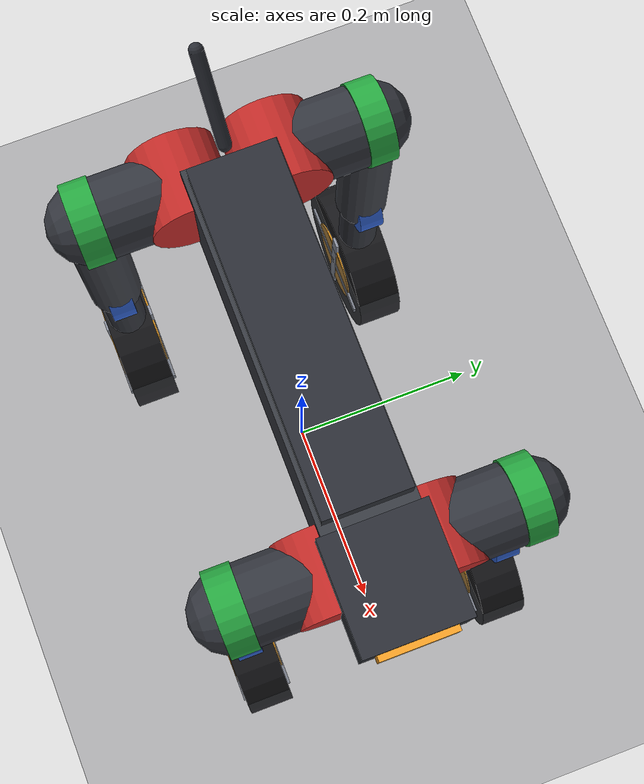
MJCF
<mujoco model="hound16pd">
  <compiler angle="radian" coordinate="local" inertiafromgeom="true"/>
  <option integrator="implicitfast" timestep="0.005"/>

  <visual>
    <global offwidth="1920" offheight="1088"/>
    <quality shadowsize="4096"/>
  </visual>

  <default>
    <!-- Leg joints. stiffness/springref are set per-joint (the stance differs
         per joint); everything else is shared. -->
    <joint type="hinge" limited="true" armature="0.01"
           damping="1.5" frictionloss="0.2"/>
    <geom condim="3" friction="0.9 0.5 0.5" margin="0.001" group="0"/>
    <motor ctrllimited="true" ctrlrange="-1 1"/>

    <!-- The wheel hinge: unlimited, no spring, low rotor inertia. Everything
         about this class exists because a wheel is not a joint with a pose. -->
    <default class="wheel">
      <joint type="hinge" limited="false" stiffness="0"
             armature="0.004" damping="0.05"
             frictionloss="0.3990"/>
    </default>

    <default class="tyre">
      <geom condim="3" priority="1"
            friction="0.9 0.03 0.002" solimp="0.95 0.99 0.001"
            margin="0.0" material="MatTyre"/>
    </default>

    <default class="deco">
      <geom contype="0" conaffinity="0" density="0" group="2"/>
    </default>
    <default class="hub">
      <geom contype="0" conaffinity="0" density="0" group="2"/>
    </default>
  </default>

  <asset>
    <material name="MatShell"  rgba="0.17 0.18 0.21 1" specular="0.6" shininess="0.55" reflectance="0.10"/>
    <material name="MatAbduct" rgba="0.76 0.17 0.16 1" specular="0.5" shininess="0.40"/>
    <material name="MatHip"    rgba="0.15 0.65 0.25 1" specular="0.5" shininess="0.40"/>
    <material name="MatKnee"   rgba="0.20 0.40 0.85 1" specular="0.5" shininess="0.40"/>
    <material name="MatWheel"  rgba="0.82 0.55 0.12 1" specular="0.7" shininess="0.60"/>
    <material name="MatSpoke"  rgba="0.55 0.57 0.62 1" specular="0.7" shininess="0.60"/>
    <material name="MatTyre"   rgba="0.09 0.09 0.10 1" specular="0.15" shininess="0.10"/>
    <material name="MatLens"   rgba="0.95 0.62 0.15 1" specular="0.9" shininess="0.90" emission="0.45"/>
  </asset>

  <asset>
    <texture builtin="gradient" height="100" rgb1="0.36 0.50 0.72" rgb2="0.82 0.86 0.92"
             type="skybox" width="100"/>
    <texture name="texplane" type="2d" builtin="checker" rgb1="0.24 0.25 0.27"
             rgb2="0.31 0.32 0.35" width="512" height="512"/>
    <material name="MatPlane" texture="texplane" texrepeat="20 20" reflectance="0.08"/>
  </asset>

  <worldbody>
    <light cutoff="100" diffuse="1 0.98 0.94" dir="0.35 0.25 -0.90" directional="true"
           exponent="1" pos="0 0 6" mode="trackcom" specular="0.15 0.15 0.15"/>
    <geom name="floor" type="plane" size="40 40 0.1" material="MatPlane"
          condim="3" conaffinity="1" group="0" friction="1 0.5 0.5"/>

    <body name="trunk" pos="0 0 0.3634">
      <camera name="track" mode="trackcom" pos="0 -2.2 0.5" xyaxes="1 0 0 0 0.3 1"/>
      <joint name="root" type="free" armature="0" damping="0" stiffness="0" limited="false"/>

      <geom name="trunk_geom" type="box" size="0.1881 0.04675 0.057" mass="6.921"
            rgba="0.22 0.23 0.26 1"/>
      <geom class="deco" name="head_pod" type="box" size="0.055 0.052 0.040"
            pos="0.2231 0 0.030" material="MatShell"/>
      <geom class="deco" name="head_lens" type="box" size="0.008 0.038 0.018"
            pos="0.2761 0 0.034" material="MatLens"/>
      <geom class="deco" name="deck" type="box" size="0.1681 0.0427 0.014"
            pos="-0.010 0 0.0690" material="MatShell"/>
      <geom class="deco" name="tail_mast" type="capsule" size="0.007"
            fromto="-0.1981 0 0.0570  -0.2581 0 0.1320"
            material="MatShell"/>

      <!-- ══ FL ══ -->
      <body name="FL_abduct" pos="0.1934 0.0465 0">
        <joint name="FL_abduct" axis="1 0 0" range="-0.8 0.8"
               stiffness="12.12" springref="-0.160000"/>
        <geom name="FL_abduct_geom" type="capsule" size="0.040"
              fromto="0 0 0  0 0.0955 0" mass="0.678" rgba="0.20 0.21 0.24 1"/>
        <geom class="hub" name="FL_abduct_hub" type="cylinder" size="0.044"
              fromto="-0.040 0 0  0.040 0 0" material="MatAbduct"/>

        <body name="FL_thigh" pos="0 0.0955 0">
          <joint name="FL_hip" axis="0 1 0" range="-1.2 2.6"
                 stiffness="18.58" springref="0.803400"/>
          <geom name="FL_thigh_geom" type="capsule" size="0.028"
                fromto="0 0 0  0 0 -0.2130" mass="1.152"
                rgba="0.24 0.25 0.28 1"/>
          <geom class="hub" name="FL_hip_hub" type="cylinder" size="0.042 0.014"
                fromto="0 -0.014 0  0 0.014 0" material="MatHip"/>

          <body name="FL_calf" pos="0 0 -0.2130">
            <joint name="FL_knee" axis="0 1 0" range="-2.6 -0.6"
                   stiffness="32.77" springref="-1.459727"/>
            <geom name="FL_calf_geom" type="capsule" size="0.022"
                  fromto="0 0 0  0 0 -0.1900" mass="0.241"
                  rgba="0.20 0.21 0.24 1"/>
            <geom class="hub" name="FL_knee_hub" type="cylinder" size="0.034 0.013"
                  fromto="0 -0.013 0  0 0.013 0" material="MatKnee"/>

            <body name="FL_wheel" pos="0 0 -0.1900">
              <joint class="wheel" name="FL_wheel" axis="0 1 0"/>
              <geom class="tyre" name="FL_wheel_geom" type="cylinder"
                    size="0.085" fromto="0 -0.025 0  0 0.025 0"
                    mass="0.45"/>
              <geom class="hub" name="FL_rim" type="cylinder"
                    size="0.0468"
                    fromto="0 -0.0270 0  0 0.0270 0" material="MatWheel"/>
              <geom class="hub" name="FL_spoke_a" type="box"
                    size="0.0680 0.0280 0.006"
                    material="MatSpoke"/>
              <geom class="hub" name="FL_spoke_b" type="box"
                    size="0.006 0.0280 0.0680"
                    material="MatSpoke"/>
            </body>
          </body>
        </body>
      </body>
      <!-- ══ FR ══ -->
      <body name="FR_abduct" pos="0.1934 -0.0465 0">
        <joint name="FR_abduct" axis="1 0 0" range="-0.8 0.8"
               stiffness="12.12" springref="0.160000"/>
        <geom name="FR_abduct_geom" type="capsule" size="0.040"
              fromto="0 0 0  0 -0.0955 0" mass="0.678" rgba="0.20 0.21 0.24 1"/>
        <geom class="hub" name="FR_abduct_hub" type="cylinder" size="0.044"
              fromto="-0.040 0 0  0.040 0 0" material="MatAbduct"/>

        <body name="FR_thigh" pos="0 -0.0955 0">
          <joint name="FR_hip" axis="0 1 0" range="-1.2 2.6"
                 stiffness="18.58" springref="0.803400"/>
          <geom name="FR_thigh_geom" type="capsule" size="0.028"
                fromto="0 0 0  0 0 -0.2130" mass="1.152"
                rgba="0.24 0.25 0.28 1"/>
          <geom class="hub" name="FR_hip_hub" type="cylinder" size="0.042 0.014"
                fromto="0 -0.014 0  0 0.014 0" material="MatHip"/>

          <body name="FR_calf" pos="0 0 -0.2130">
            <joint name="FR_knee" axis="0 1 0" range="-2.6 -0.6"
                   stiffness="32.77" springref="-1.459727"/>
            <geom name="FR_calf_geom" type="capsule" size="0.022"
                  fromto="0 0 0  0 0 -0.1900" mass="0.241"
                  rgba="0.20 0.21 0.24 1"/>
            <geom class="hub" name="FR_knee_hub" type="cylinder" size="0.034 0.013"
                  fromto="0 -0.013 0  0 0.013 0" material="MatKnee"/>

            <body name="FR_wheel" pos="0 0 -0.1900">
              <joint class="wheel" name="FR_wheel" axis="0 1 0"/>
              <geom class="tyre" name="FR_wheel_geom" type="cylinder"
                    size="0.085" fromto="0 -0.025 0  0 0.025 0"
                    mass="0.45"/>
              <geom class="hub" name="FR_rim" type="cylinder"
                    size="0.0468"
                    fromto="0 -0.0270 0  0 0.0270 0" material="MatWheel"/>
              <geom class="hub" name="FR_spoke_a" type="box"
                    size="0.0680 0.0280 0.006"
                    material="MatSpoke"/>
              <geom class="hub" name="FR_spoke_b" type="box"
                    size="0.006 0.0280 0.0680"
                    material="MatSpoke"/>
            </body>
          </body>
        </body>
      </body>
      <!-- ══ RL ══ -->
      <body name="RL_abduct" pos="-0.1934 0.0465 0">
        <joint name="RL_abduct" axis="1 0 0" range="-0.8 0.8"
               stiffness="12.12" springref="-0.160000"/>
        <geom name="RL_abduct_geom" type="capsule" size="0.040"
              fromto="0 0 0  0 0.0955 0" mass="0.678" rgba="0.20 0.21 0.24 1"/>
        <geom class="hub" name="RL_abduct_hub" type="cylinder" size="0.044"
              fromto="-0.040 0 0  0.040 0 0" material="MatAbduct"/>

        <body name="RL_thigh" pos="0 0.0955 0">
          <joint name="RL_hip" axis="0 1 0" range="-1.2 2.6"
                 stiffness="18.58" springref="0.803400"/>
          <geom name="RL_thigh_geom" type="capsule" size="0.028"
                fromto="0 0 0  0 0 -0.2130" mass="1.152"
                rgba="0.24 0.25 0.28 1"/>
          <geom class="hub" name="RL_hip_hub" type="cylinder" size="0.042 0.014"
                fromto="0 -0.014 0  0 0.014 0" material="MatHip"/>

          <body name="RL_calf" pos="0 0 -0.2130">
            <joint name="RL_knee" axis="0 1 0" range="-2.6 -0.6"
                   stiffness="32.77" springref="-1.459727"/>
            <geom name="RL_calf_geom" type="capsule" size="0.022"
                  fromto="0 0 0  0 0 -0.1900" mass="0.241"
                  rgba="0.20 0.21 0.24 1"/>
            <geom class="hub" name="RL_knee_hub" type="cylinder" size="0.034 0.013"
                  fromto="0 -0.013 0  0 0.013 0" material="MatKnee"/>

            <body name="RL_wheel" pos="0 0 -0.1900">
              <joint class="wheel" name="RL_wheel" axis="0 1 0"/>
              <geom class="tyre" name="RL_wheel_geom" type="cylinder"
                    size="0.085" fromto="0 -0.025 0  0 0.025 0"
                    mass="0.45"/>
              <geom class="hub" name="RL_rim" type="cylinder"
                    size="0.0468"
                    fromto="0 -0.0270 0  0 0.0270 0" material="MatWheel"/>
              <geom class="hub" name="RL_spoke_a" type="box"
                    size="0.0680 0.0280 0.006"
                    material="MatSpoke"/>
              <geom class="hub" name="RL_spoke_b" type="box"
                    size="0.006 0.0280 0.0680"
                    material="MatSpoke"/>
            </body>
          </body>
        </body>
      </body>
      <!-- ══ RR ══ -->
      <body name="RR_abduct" pos="-0.1934 -0.0465 0">
        <joint name="RR_abduct" axis="1 0 0" range="-0.8 0.8"
               stiffness="12.12" springref="0.160000"/>
        <geom name="RR_abduct_geom" type="capsule" size="0.040"
              fromto="0 0 0  0 -0.0955 0" mass="0.678" rgba="0.20 0.21 0.24 1"/>
        <geom class="hub" name="RR_abduct_hub" type="cylinder" size="0.044"
              fromto="-0.040 0 0  0.040 0 0" material="MatAbduct"/>

        <body name="RR_thigh" pos="0 -0.0955 0">
          <joint name="RR_hip" axis="0 1 0" range="-1.2 2.6"
                 stiffness="18.58" springref="0.803400"/>
          <geom name="RR_thigh_geom" type="capsule" size="0.028"
                fromto="0 0 0  0 0 -0.2130" mass="1.152"
                rgba="0.24 0.25 0.28 1"/>
          <geom class="hub" name="RR_hip_hub" type="cylinder" size="0.042 0.014"
                fromto="0 -0.014 0  0 0.014 0" material="MatHip"/>

          <body name="RR_calf" pos="0 0 -0.2130">
            <joint name="RR_knee" axis="0 1 0" range="-2.6 -0.6"
                   stiffness="32.77" springref="-1.459727"/>
            <geom name="RR_calf_geom" type="capsule" size="0.022"
                  fromto="0 0 0  0 0 -0.1900" mass="0.241"
                  rgba="0.20 0.21 0.24 1"/>
            <geom class="hub" name="RR_knee_hub" type="cylinder" size="0.034 0.013"
                  fromto="0 -0.013 0  0 0.013 0" material="MatKnee"/>

            <body name="RR_wheel" pos="0 0 -0.1900">
              <joint class="wheel" name="RR_wheel" axis="0 1 0"/>
              <geom class="tyre" name="RR_wheel_geom" type="cylinder"
                    size="0.085" fromto="0 -0.025 0  0 0.025 0"
                    mass="0.45"/>
              <geom class="hub" name="RR_rim" type="cylinder"
                    size="0.0468"
                    fromto="0 -0.0270 0  0 0.0270 0" material="MatWheel"/>
              <geom class="hub" name="RR_spoke_a" type="box"
                    size="0.0680 0.0280 0.006"
                    material="MatSpoke"/>
              <geom class="hub" name="RR_spoke_b" type="box"
                    size="0.006 0.0280 0.0680"
                    material="MatSpoke"/>
            </body>
          </body>
        </body>
      </body>
    </body>
  </worldbody>

  <actuator>
    <position name="FL_abduct" joint="FL_abduct" kp="60.0" kv="3.0" ctrlrange="-0.8 0.8" forcerange="-23.7 23.7"/>
    <position name="FL_hip"    joint="FL_hip"    kp="80.0" kv="4.0" ctrlrange="-1.2 2.6" forcerange="-23.7 23.7"/>
    <position name="FL_knee"   joint="FL_knee"   kp="90.0" kv="4.5" ctrlrange="-2.6 -0.6" forcerange="-40.0 40.0"/>
    <motor name="FL_wheel"  joint="FL_wheel"  gear="3.0"/>
    <position name="FR_abduct" joint="FR_abduct" kp="60.0" kv="3.0" ctrlrange="-0.8 0.8" forcerange="-23.7 23.7"/>
    <position name="FR_hip"    joint="FR_hip"    kp="80.0" kv="4.0" ctrlrange="-1.2 2.6" forcerange="-23.7 23.7"/>
    <position name="FR_knee"   joint="FR_knee"   kp="90.0" kv="4.5" ctrlrange="-2.6 -0.6" forcerange="-40.0 40.0"/>
    <motor name="FR_wheel"  joint="FR_wheel"  gear="3.0"/>
    <position name="RL_abduct" joint="RL_abduct" kp="60.0" kv="3.0" ctrlrange="-0.8 0.8" forcerange="-23.7 23.7"/>
    <position name="RL_hip"    joint="RL_hip"    kp="80.0" kv="4.0" ctrlrange="-1.2 2.6" forcerange="-23.7 23.7"/>
    <position name="RL_knee"   joint="RL_knee"   kp="90.0" kv="4.5" ctrlrange="-2.6 -0.6" forcerange="-40.0 40.0"/>
    <motor name="RL_wheel"  joint="RL_wheel"  gear="3.0"/>
    <position name="RR_abduct" joint="RR_abduct" kp="60.0" kv="3.0" ctrlrange="-0.8 0.8" forcerange="-23.7 23.7"/>
    <position name="RR_hip"    joint="RR_hip"    kp="80.0" kv="4.0" ctrlrange="-1.2 2.6" forcerange="-23.7 23.7"/>
    <position name="RR_knee"   joint="RR_knee"   kp="90.0" kv="4.5" ctrlrange="-2.6 -0.6" forcerange="-40.0 40.0"/>
    <motor name="RR_wheel"  joint="RR_wheel"  gear="3.0"/>
  </actuator>

  <keyframe>
    <key name="stance" qpos="0 0 0.363406 1 0 0 0 0 0.75 -1.61973 0 0 0.75 -1.61973 0 0 0.75 -1.61973 0 0 0.75 -1.61973 0"/>
  </keyframe>
</mujoco>
